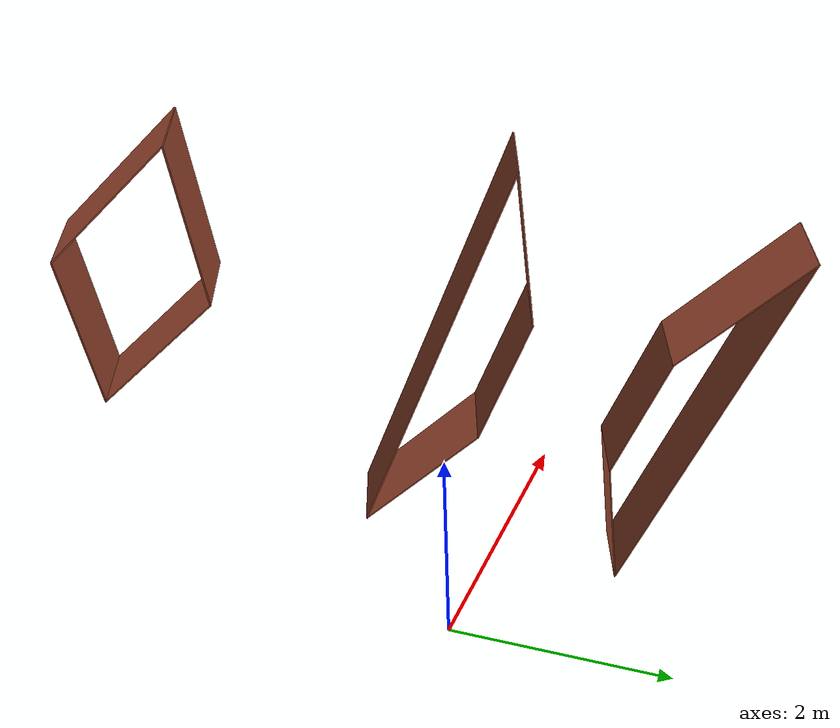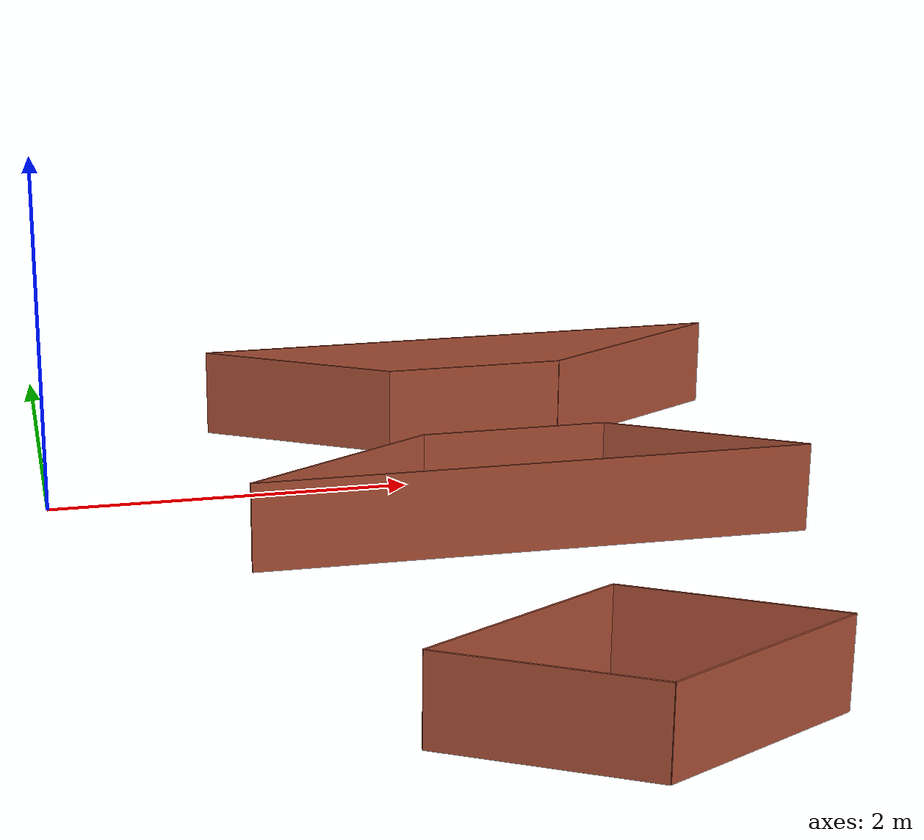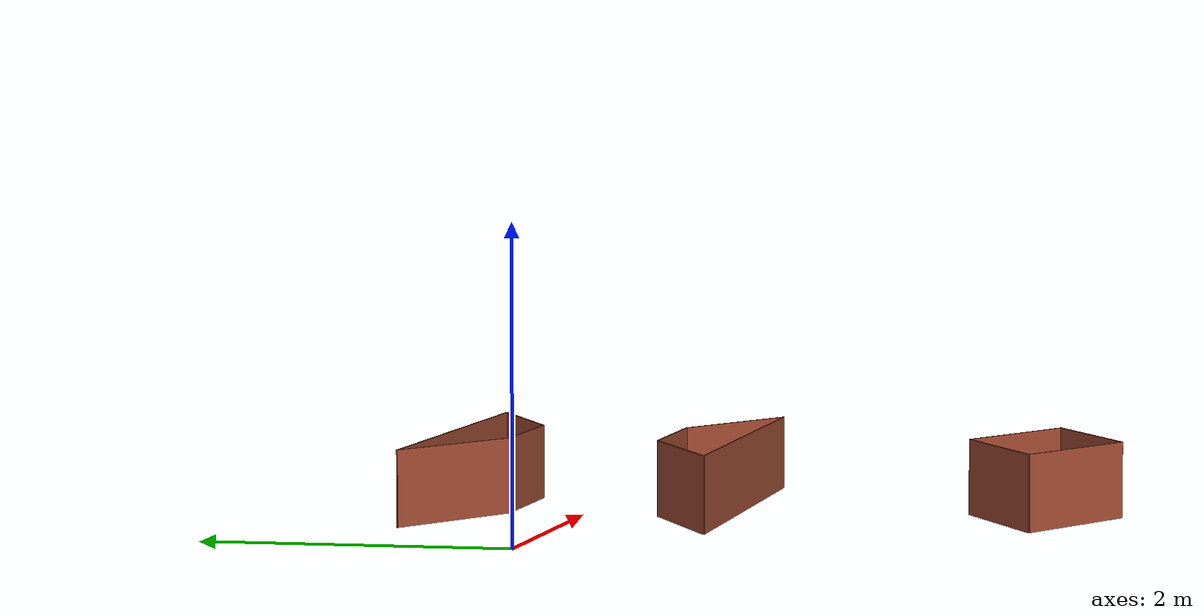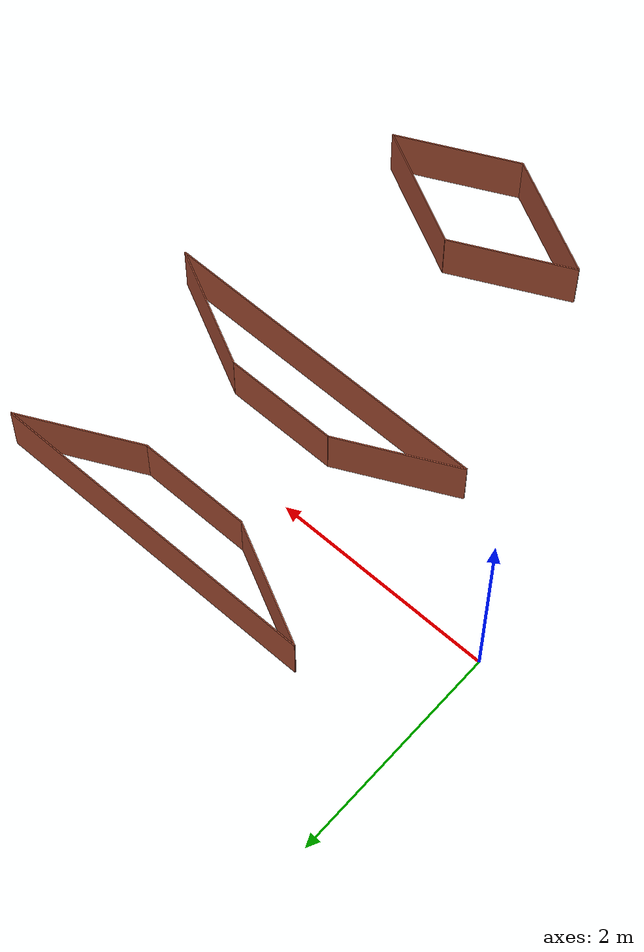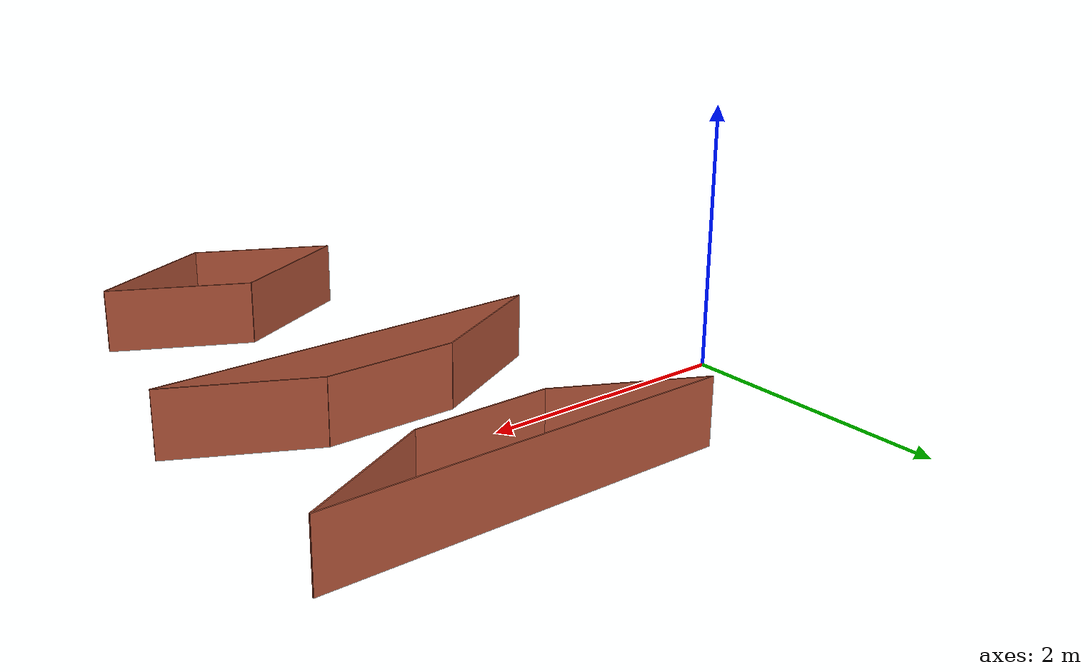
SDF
<sdf version='1.5'>
                <!-- This SDF file is for enlarging environment -->
                <model name='ros_symbol'>
                    <static>1</static>
                    <link name='symbol'>

            <collision name='obs_wall_1'>
                <pose>2.5 1.0 0.25 0 0 0.000</pose>
                <geometry>
                    <box><size>3.000 0.01 0.5</size></box>
                </geometry>
                <max_contacts>10</max_contacts>
                <surface><bounce/><friction><ode/></friction><contact><ode/></contact></surface>
            </collision>

            <visual name='obs_wall_1'>
                <pose>2.5 1.0 0.25 0 0 0.000</pose>
                <geometry>
                    <box><size>3.000 0.01 0.5</size></box>
                </geometry>
                <material>
                    <script>
                        <uri>file://media/materials/scripts/gazebo.material</uri>
                        <name>Gazebo/Bricks</name>
                    </script>
                </material>
            </visual>

            <collision name='obs_wall_2'>
                <pose>3.5 0.75 0.25 0 0 -2.678</pose>
                <geometry>
                    <box><size>1.118 0.01 0.5</size></box>
                </geometry>
                <max_contacts>10</max_contacts>
                <surface><bounce/><friction><ode/></friction><contact><ode/></contact></surface>
            </collision>

            <visual name='obs_wall_2'>
                <pose>3.5 0.75 0.25 0 0 -2.678</pose>
                <geometry>
                    <box><size>1.118 0.01 0.5</size></box>
                </geometry>
                <material>
                    <script>
                        <uri>file://media/materials/scripts/gazebo.material</uri>
                        <name>Gazebo/Bricks</name>
                    </script>
                </material>
            </visual>

            <collision name='obs_wall_3'>
                <pose>2.5 0.5 0.25 0 0 3.142</pose>
                <geometry>
                    <box><size>1.000 0.01 0.5</size></box>
                </geometry>
                <max_contacts>10</max_contacts>
                <surface><bounce/><friction><ode/></friction><contact><ode/></contact></surface>
            </collision>

            <visual name='obs_wall_3'>
                <pose>2.5 0.5 0.25 0 0 3.142</pose>
                <geometry>
                    <box><size>1.000 0.01 0.5</size></box>
                </geometry>
                <material>
                    <script>
                        <uri>file://media/materials/scripts/gazebo.material</uri>
                        <name>Gazebo/Bricks</name>
                    </script>
                </material>
            </visual>

            <collision name='obs_wall_4'>
                <pose>1.5 0.75 0.25 0 0 2.678</pose>
                <geometry>
                    <box><size>1.118 0.01 0.5</size></box>
                </geometry>
                <max_contacts>10</max_contacts>
                <surface><bounce/><friction><ode/></friction><contact><ode/></contact></surface>
            </collision>

            <visual name='obs_wall_4'>
                <pose>1.5 0.75 0.25 0 0 2.678</pose>
                <geometry>
                    <box><size>1.118 0.01 0.5</size></box>
                </geometry>
                <material>
                    <script>
                        <uri>file://media/materials/scripts/gazebo.material</uri>
                        <name>Gazebo/Bricks</name>
                    </script>
                </material>
            </visual>

            <collision name='obs_wall_5'>
                <pose>2.5 -1.0 0.25 0 0 0.000</pose>
                <geometry>
                    <box><size>3.000 0.01 0.5</size></box>
                </geometry>
                <max_contacts>10</max_contacts>
                <surface><bounce/><friction><ode/></friction><contact><ode/></contact></surface>
            </collision>

            <visual name='obs_wall_5'>
                <pose>2.5 -1.0 0.25 0 0 0.000</pose>
                <geometry>
                    <box><size>3.000 0.01 0.5</size></box>
                </geometry>
                <material>
                    <script>
                        <uri>file://media/materials/scripts/gazebo.material</uri>
                        <name>Gazebo/Bricks</name>
                    </script>
                </material>
            </visual>

            <collision name='obs_wall_6'>
                <pose>3.5 -0.75 0.25 0 0 2.678</pose>
                <geometry>
                    <box><size>1.118 0.01 0.5</size></box>
                </geometry>
                <max_contacts>10</max_contacts>
                <surface><bounce/><friction><ode/></friction><contact><ode/></contact></surface>
            </collision>

            <visual name='obs_wall_6'>
                <pose>3.5 -0.75 0.25 0 0 2.678</pose>
                <geometry>
                    <box><size>1.118 0.01 0.5</size></box>
                </geometry>
                <material>
                    <script>
                        <uri>file://media/materials/scripts/gazebo.material</uri>
                        <name>Gazebo/Bricks</name>
                    </script>
                </material>
            </visual>

            <collision name='obs_wall_7'>
                <pose>2.5 -0.5 0.25 0 0 3.142</pose>
                <geometry>
                    <box><size>1.000 0.01 0.5</size></box>
                </geometry>
                <max_contacts>10</max_contacts>
                <surface><bounce/><friction><ode/></friction><contact><ode/></contact></surface>
            </collision>

            <visual name='obs_wall_7'>
                <pose>2.5 -0.5 0.25 0 0 3.142</pose>
                <geometry>
                    <box><size>1.000 0.01 0.5</size></box>
                </geometry>
                <material>
                    <script>
                        <uri>file://media/materials/scripts/gazebo.material</uri>
                        <name>Gazebo/Bricks</name>
                    </script>
                </material>
            </visual>

            <collision name='obs_wall_8'>
                <pose>1.5 -0.75 0.25 0 0 -2.678</pose>
                <geometry>
                    <box><size>1.118 0.01 0.5</size></box>
                </geometry>
                <max_contacts>10</max_contacts>
                <surface><bounce/><friction><ode/></friction><contact><ode/></contact></surface>
            </collision>

            <visual name='obs_wall_8'>
                <pose>1.5 -0.75 0.25 0 0 -2.678</pose>
                <geometry>
                    <box><size>1.118 0.01 0.5</size></box>
                </geometry>
                <material>
                    <script>
                        <uri>file://media/materials/scripts/gazebo.material</uri>
                        <name>Gazebo/Bricks</name>
                    </script>
                </material>
            </visual>

            <collision name='obs_wall_9'>
                <pose>2.0 -2.75 0.25 0 0 0.464</pose>
                <geometry>
                    <box><size>1.118 0.01 0.5</size></box>
                </geometry>
                <max_contacts>10</max_contacts>
                <surface><bounce/><friction><ode/></friction><contact><ode/></contact></surface>
            </collision>

            <visual name='obs_wall_9'>
                <pose>2.0 -2.75 0.25 0 0 0.464</pose>
                <geometry>
                    <box><size>1.118 0.01 0.5</size></box>
                </geometry>
                <material>
                    <script>
                        <uri>file://media/materials/scripts/gazebo.material</uri>
                        <name>Gazebo/Bricks</name>
                    </script>
                </material>
            </visual>

            <collision name='obs_wall_10'>
                <pose>3.0 -2.75 0.25 0 0 -0.464</pose>
                <geometry>
                    <box><size>1.118 0.01 0.5</size></box>
                </geometry>
                <max_contacts>10</max_contacts>
                <surface><bounce/><friction><ode/></friction><contact><ode/></contact></surface>
            </collision>

            <visual name='obs_wall_10'>
                <pose>3.0 -2.75 0.25 0 0 -0.464</pose>
                <geometry>
                    <box><size>1.118 0.01 0.5</size></box>
                </geometry>
                <material>
                    <script>
                        <uri>file://media/materials/scripts/gazebo.material</uri>
                        <name>Gazebo/Bricks</name>
                    </script>
                </material>
            </visual>

            <collision name='obs_wall_11'>
                <pose>3.0 -3.25 0.25 0 0 -2.678</pose>
                <geometry>
                    <box><size>1.118 0.01 0.5</size></box>
                </geometry>
                <max_contacts>10</max_contacts>
                <surface><bounce/><friction><ode/></friction><contact><ode/></contact></surface>
            </collision>

            <visual name='obs_wall_11'>
                <pose>3.0 -3.25 0.25 0 0 -2.678</pose>
                <geometry>
                    <box><size>1.118 0.01 0.5</size></box>
                </geometry>
                <material>
                    <script>
                        <uri>file://media/materials/scripts/gazebo.material</uri>
                        <name>Gazebo/Bricks</name>
                    </script>
                </material>
            </visual>

            <collision name='obs_wall_12'>
                <pose>2.0 -3.25 0.25 0 0 2.678</pose>
                <geometry>
                    <box><size>1.118 0.01 0.5</size></box>
                </geometry>
                <max_contacts>10</max_contacts>
                <surface><bounce/><friction><ode/></friction><contact><ode/></contact></surface>
            </collision>

            <visual name='obs_wall_12'>
                <pose>2.0 -3.25 0.25 0 0 2.678</pose>
                <geometry>
                    <box><size>1.118 0.01 0.5</size></box>
                </geometry>
                <material>
                    <script>
                        <uri>file://media/materials/scripts/gazebo.material</uri>
                        <name>Gazebo/Bricks</name>
                    </script>
                </material>
            </visual>

                    </link>
                </model>
            </sdf>
